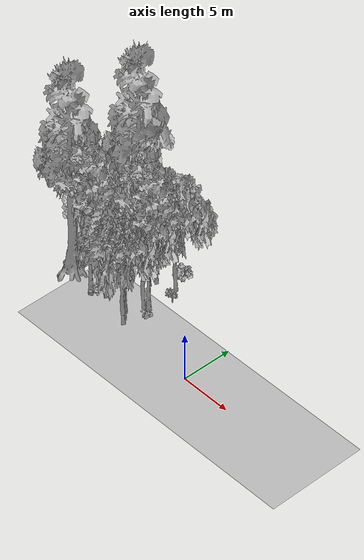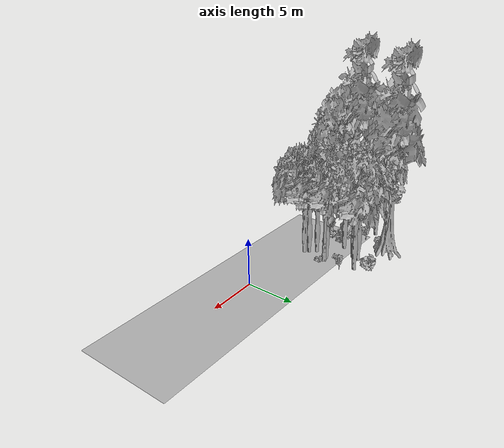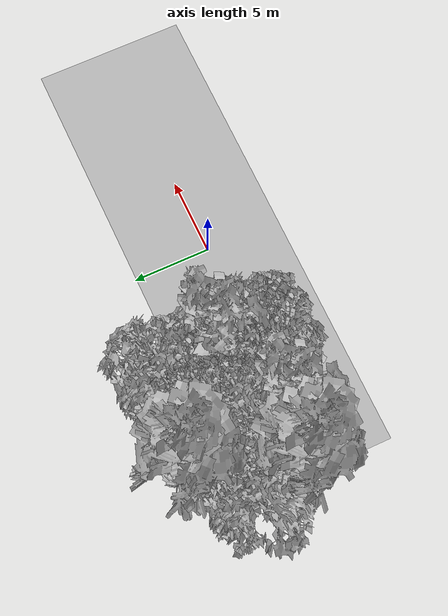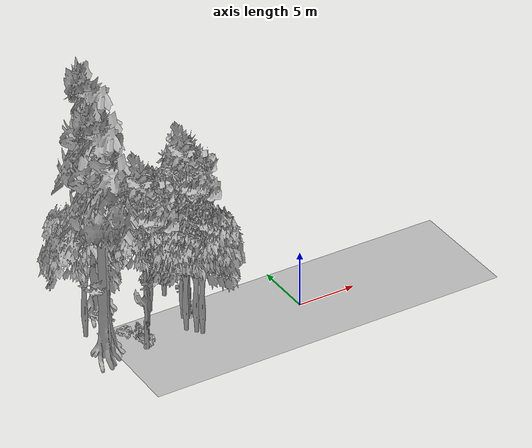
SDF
<sdf version="1.7">
 <world name="default">
  <model name="ground_plane">
   <static>1</static>
   <link name="link">
    <collision name="collision">
     <geometry><plane><normal>0 0 1</normal><size>100 100</size></plane></geometry>
     <surface><contact><ode><min_depth>0.01</min_depth><max_vel>0</max_vel></ode></contact></surface>
    </collision>
    <visual name="grass">
     <cast_shadows>0</cast_shadows>
     <geometry>
      <mesh>
       <scale>0.5814285714285714 0.18142857142857144 0.1</scale>
       <uri>file://grass_plane/meshes/grass_plane.dae</uri>
      </mesh>
     </geometry>
    </visual>
   </link>
  </model>
  <model name="Tree 32">
   <static>1</static>
   <pose>-8.600275042310976 0.6815665782726263 0 1.57079 -0 0</pose>
   <link name="link">
    <collision name="collision">
     <geometry><mesh><scale>3.5 5 3.5</scale><uri>model://tree_2/meshes/tree_2.obj</uri></mesh></geometry>
    </collision>
    <visual name="visual">
     <geometry><mesh><scale>3.5 5 3.5</scale><uri>model://tree_2/meshes/tree_2.obj</uri></mesh></geometry>
    </visual>
   </link>
  </model>
  <model name="Tree 40">
   <static>1</static>
   <pose>-10.452956551301305 6.191043097540529 0 1.57079 -0 0</pose>
   <link name="link">
    <collision name="collision">
     <geometry><mesh><scale>3.5 5 3.5</scale><uri>model://tree_2/meshes/tree_2.obj</uri></mesh></geometry>
    </collision>
    <visual name="visual">
     <geometry><mesh><scale>3.5 5 3.5</scale><uri>model://tree_2/meshes/tree_2.obj</uri></mesh></geometry>
    </visual>
   </link>
  </model>
  <model name="Tree 55">
   <static>1</static>
   <pose>-8.902627469566433 1.0932942134292496 0 1.57079 -0 0</pose>
   <link name="link">
    <collision name="collision">
     <geometry><mesh><scale>3.5 5 3.5</scale><uri>model://tree_2/meshes/tree_2.obj</uri></mesh></geometry>
    </collision>
    <visual name="visual">
     <geometry><mesh><scale>3.5 5 3.5</scale><uri>model://tree_2/meshes/tree_2.obj</uri></mesh></geometry>
    </visual>
   </link>
  </model>
  <model name="Tree 63">
   <static>1</static>
   <pose>-11.825618906742733 3.740813101395151 0 1.57079 -0 0</pose>
   <link name="link">
    <collision name="collision">
     <geometry><mesh><scale>3.5 5 3.5</scale><uri>model://tree_2/meshes/tree_2.obj</uri></mesh></geometry>
    </collision>
    <visual name="visual">
     <geometry><mesh><scale>3.5 5 3.5</scale><uri>model://tree_2/meshes/tree_2.obj</uri></mesh></geometry>
    </visual>
   </link>
  </model>
  <model name="Tree 88">
   <static>1</static>
   <pose>-8.88204895974733 3.2727706636215608 0 1.57079 -0 0</pose>
   <link name="link">
    <collision name="collision">
     <geometry><mesh><scale>3.5 5 3.5</scale><uri>model://tree_2/meshes/tree_2.obj</uri></mesh></geometry>
    </collision>
    <visual name="visual">
     <geometry><mesh><scale>3.5 5 3.5</scale><uri>model://tree_2/meshes/tree_2.obj</uri></mesh></geometry>
    </visual>
   </link>
  </model>
  <model name="Tree 102">
   <static>1</static>
   <pose>-9.477634074828842 1.721871790776028 0 1.57079 -0 0</pose>
   <link name="link">
    <collision name="collision">
     <geometry><mesh><scale>3.5 5 3.5</scale><uri>model://tree_2/meshes/tree_2.obj</uri></mesh></geometry>
    </collision>
    <visual name="visual">
     <geometry><mesh><scale>3.5 5 3.5</scale><uri>model://tree_2/meshes/tree_2.obj</uri></mesh></geometry>
    </visual>
   </link>
  </model>
  <model name="Tree 156">
   <static>1</static>
   <pose>-16.425684743291804 2.0423744481500385 0 1.57079 -0 0</pose>
   <link name="link">
    <collision name="collision">
     <geometry><mesh><scale>3.5 5 3.5</scale><uri>model://tree_4/meshes/tree_4.obj</uri></mesh></geometry>
    </collision>
    <visual name="visual">
     <geometry><mesh><scale>3.5 5 3.5</scale><uri>model://tree_4/meshes/tree_4.obj</uri></mesh></geometry>
    </visual>
   </link>
  </model>
  <model name="Tree 192">
   <static>1</static>
   <pose>-8.612135220558216 6.755695580481046 0 1.57079 -0 0</pose>
   <link name="link">
    <collision name="collision">
     <geometry><mesh><scale>3.5 5 3.5</scale><uri>model://tree_2/meshes/tree_2.obj</uri></mesh></geometry>
    </collision>
    <visual name="visual">
     <geometry><mesh><scale>3.5 5 3.5</scale><uri>model://tree_2/meshes/tree_2.obj</uri></mesh></geometry>
    </visual>
   </link>
  </model>
  <model name="Tree 266">
   <static>1</static>
   <pose>-14.087157153828436 7.700675729254115 0 1.57079 -0 0</pose>
   <link name="link">
    <collision name="collision">
     <geometry><mesh><scale>3.5 5 3.5</scale><uri>model://tree_4/meshes/tree_4.obj</uri></mesh></geometry>
    </collision>
    <visual name="visual">
     <geometry><mesh><scale>3.5 5 3.5</scale><uri>model://tree_4/meshes/tree_4.obj</uri></mesh></geometry>
    </visual>
   </link>
  </model>
  <model name="Tree 320">
   <static>1</static>
   <pose>-13.20996943421224 1.2165294818338062 0 1.57079 -0 0</pose>
   <link name="link">
    <collision name="collision">
     <geometry><mesh><scale>3.5 5 3.5</scale><uri>model://tree_9/meshes/tree_9.obj</uri></mesh></geometry>
    </collision>
    <visual name="visual">
     <geometry><mesh><scale>3.5 5 3.5</scale><uri>model://tree_9/meshes/tree_9.obj</uri></mesh></geometry>
    </visual>
   </link>
  </model>
  <model name="Tree 345">
   <static>1</static>
   <pose>-8.228681884261654 3.377325859941074 0 1.57079 -0 0</pose>
   <link name="link">
    <collision name="collision">
     <geometry><mesh><scale>3.5 5 3.5</scale><uri>model://tree_9/meshes/tree_9.obj</uri></mesh></geometry>
    </collision>
    <visual name="visual">
     <geometry><mesh><scale>3.5 5 3.5</scale><uri>model://tree_9/meshes/tree_9.obj</uri></mesh></geometry>
    </visual>
   </link>
  </model>
  <model name="Tree 346">
   <static>1</static>
   <pose>-16.66890441520318 5.0367424321295715 0 1.57079 -0 0</pose>
   <link name="link">
    <collision name="collision">
     <geometry><mesh><scale>3.5 5 3.5</scale><uri>model://tree_2/meshes/tree_2.obj</uri></mesh></geometry>
    </collision>
    <visual name="visual">
     <geometry><mesh><scale>3.5 5 3.5</scale><uri>model://tree_2/meshes/tree_2.obj</uri></mesh></geometry>
    </visual>
   </link>
  </model>
  <model name="Tree 423">
   <static>1</static>
   <pose>-10.623637083332298 5.495702462556459 0 1.57079 -0 0</pose>
   <link name="link">
    <collision name="collision">
     <geometry><mesh><scale>3.5 5 3.5</scale><uri>model://tree_2/meshes/tree_2.obj</uri></mesh></geometry>
    </collision>
    <visual name="visual">
     <geometry><mesh><scale>3.5 5 3.5</scale><uri>model://tree_2/meshes/tree_2.obj</uri></mesh></geometry>
    </visual>
   </link>
  </model>
  <model name="Bush 0">
   <static>1</static>
   <pose>-13.960115674032828 3.436412207342638 0 1.57079 -0 0</pose>
   <link name="link">
    <collision name="collision">
     <geometry><mesh><scale>2 2 2</scale><uri>model://bush_3/meshes/bush_3.obj</uri></mesh></geometry>
     <surface><contact><collide_without_contact>false</collide_without_contact></contact></surface>
    </collision>
    <visual name="visual">
     <geometry><mesh><scale>2 2 2</scale><uri>model://bush_3/meshes/bush_3.obj</uri></mesh></geometry>
    </visual>
   </link>
  </model>
  <model name="Bush 9">
   <static>1</static>
   <pose>-14.7992020259504 6.482036812200683 0 1.57079 -0 0</pose>
   <link name="link">
    <collision name="collision">
     <geometry><mesh><scale>2 2 2</scale><uri>model://bush_3/meshes/bush_3.obj</uri></mesh></geometry>
     <surface><contact><collide_without_contact>false</collide_without_contact></contact></surface>
    </collision>
    <visual name="visual">
     <geometry><mesh><scale>2 2 2</scale><uri>model://bush_3/meshes/bush_3.obj</uri></mesh></geometry>
    </visual>
   </link>
  </model>
  <model name="Bush 29">
   <static>1</static>
   <pose>-12.939218321972852 2.549598154472335 0 1.57079 -0 0</pose>
   <link name="link">
    <collision name="collision">
     <geometry><mesh><scale>2 2 2</scale><uri>model://bush_2/meshes/bush_2.obj</uri></mesh></geometry>
     <surface><contact><collide_without_contact>false</collide_without_contact></contact></surface>
    </collision>
    <visual name="visual">
     <geometry><mesh><scale>2 2 2</scale><uri>model://bush_2/meshes/bush_2.obj</uri></mesh></geometry>
    </visual>
   </link>
  </model>
  <model name="Bush 33">
   <static>1</static>
   <pose>-14.807289153463124 4.768971087465943 0 1.57079 -0 0</pose>
   <link name="link">
    <collision name="collision">
     <geometry><mesh><scale>2 2 2</scale><uri>model://bush_5/meshes/bush_5.obj</uri></mesh></geometry>
     <surface><contact><collide_without_contact>false</collide_without_contact></contact></surface>
    </collision>
    <visual name="visual">
     <geometry><mesh><scale>2 2 2</scale><uri>model://bush_5/meshes/bush_5.obj</uri></mesh></geometry>
    </visual>
   </link>
  </model>
  <model name="Bush 34">
   <static>1</static>
   <pose>-7.616564691595919 5.57932489048822 0 1.57079 -0 0</pose>
   <link name="link">
    <collision name="collision">
     <geometry><mesh><scale>2 2 2</scale><uri>model://bush_5/meshes/bush_5.obj</uri></mesh></geometry>
     <surface><contact><collide_without_contact>false</collide_without_contact></contact></surface>
    </collision>
    <visual name="visual">
     <geometry><mesh><scale>2 2 2</scale><uri>model://bush_5/meshes/bush_5.obj</uri></mesh></geometry>
    </visual>
   </link>
  </model>
  <model name="Bush 83">
   <static>1</static>
   <pose>-12.943655077829959 1.554860902734827 0 1.57079 -0 0</pose>
   <link name="link">
    <collision name="collision">
     <geometry><mesh><scale>2 2 2</scale><uri>model://bush_3/meshes/bush_3.obj</uri></mesh></geometry>
     <surface><contact><collide_without_contact>false</collide_without_contact></contact></surface>
    </collision>
    <visual name="visual">
     <geometry><mesh><scale>2 2 2</scale><uri>model://bush_3/meshes/bush_3.obj</uri></mesh></geometry>
    </visual>
   </link>
  </model>
  <model name="Bush 88">
   <static>1</static>
   <pose>-13.18519355334572 2.547316151968211 0 1.57079 -0 0</pose>
   <link name="link">
    <collision name="collision">
     <geometry><mesh><scale>2 2 2</scale><uri>model://bush_4/meshes/bush_4.obj</uri></mesh></geometry>
     <surface><contact><collide_without_contact>false</collide_without_contact></contact></surface>
    </collision>
    <visual name="visual">
     <geometry><mesh><scale>2 2 2</scale><uri>model://bush_4/meshes/bush_4.obj</uri></mesh></geometry>
    </visual>
   </link>
  </model>
  <model name="Bush 273">
   <static>1</static>
   <pose>-9.045010164343914 7.934655550871099 0 1.57079 -0 0</pose>
   <link name="link">
    <collision name="collision">
     <geometry><mesh><scale>2 2 2</scale><uri>model://bush_1/meshes/bush_1.obj</uri></mesh></geometry>
     <surface><contact><collide_without_contact>false</collide_without_contact></contact></surface>
    </collision>
    <visual name="visual">
     <geometry><mesh><scale>2 2 2</scale><uri>model://bush_1/meshes/bush_1.obj</uri></mesh></geometry>
    </visual>
   </link>
  </model>
  <model name="Bush 304">
   <static>1</static>
   <pose>-7.985787897196886 2.8919244247300817 0 1.57079 -0 0</pose>
   <link name="link">
    <collision name="collision">
     <geometry><mesh><scale>2 2 2</scale><uri>model://bush_2/meshes/bush_2.obj</uri></mesh></geometry>
     <surface><contact><collide_without_contact>false</collide_without_contact></contact></surface>
    </collision>
    <visual name="visual">
     <geometry><mesh><scale>2 2 2</scale><uri>model://bush_2/meshes/bush_2.obj</uri></mesh></geometry>
    </visual>
   </link>
  </model>
 </world>
</sdf>
